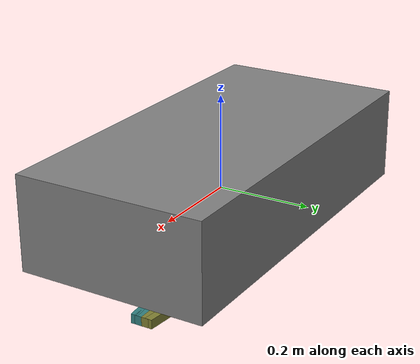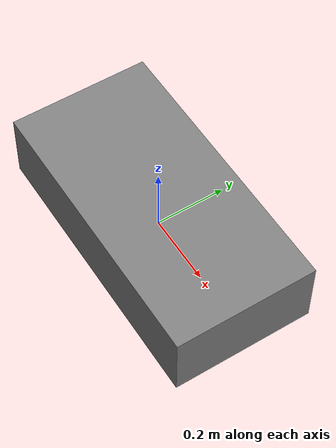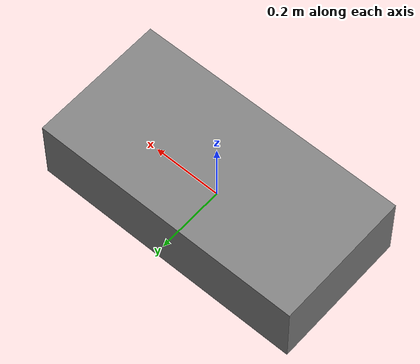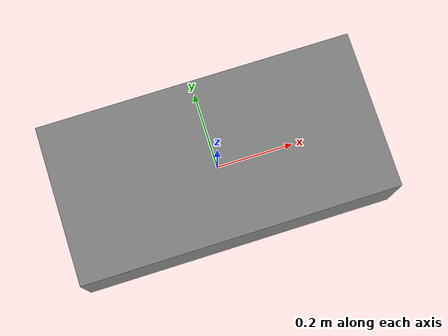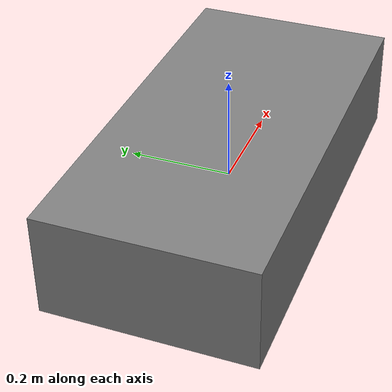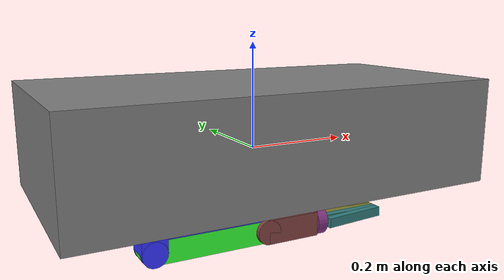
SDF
<?xml version="1.0" ?>
<sdf version="1.6">
  <world name="robosub_simulation_V2">

    <!-- Lighting -->
    <light name="sun" type="directional">
      <pose>0 0 10 0 0 0</pose>
      <diffuse>1 1 1 1</diffuse>
      <specular>0.5 0.5 0.5 1</specular>
      <direction>0.1 0.1 -1</direction>
      <cast_shadows>true</cast_shadows>
    </light>

    <!-- buoyancy plugin -->
    <plugin filename="gz-sim-buoyancy-system"
            name="gz::sim::systems::Buoyancy">
      <uniform_fluid_density>1000</uniform_fluid_density>
    </plugin>

    <!-- seafloor at z= -10-->
    <model name="seafloor">
      <static>true</static>
      <pose>0 0 -10 0 0 0</pose>
      <link name="link">
        <collision name="seafloor_collision">
          <geometry>
            <plane><normal>0 0 1</normal></plane>
          </geometry>
        </collision>
        <visual name="seafloor_visual">
          <geometry>
            <plane>
              <normal>0 0 1</normal>
              <size>50 50</size>
            </plane>
          </geometry>
          <material>
            <diffuse>0.75 0.70 0.45 1</diffuse>
  	        <ambient>0.75 0.70 0.45 1</ambient>
          </material>
        </visual>
      </link>
    </model>

    <!-- sub model -->
    <model name="robosub">
      <!-- static robosub body -->
      <link name="robosub_body">

        <pose>0 0 0 0 0 0</pose>

        <visual name="robosub_body_visual">
          <pose>0 0 0.03 0 0 0</pose>
          <geometry>
            <box>
              <size>0.8 0.4 0.2</size>
            </box>
          </geometry>
          <material>
            <ambient>0.5 0.5 0.5 1.0</ambient>
            <diffuse>0.5 0.5 0.5 1.0</diffuse>
          </material>
        </visual>

        <collision name="robosub_body_collision">
          <pose>0 0 0.03 0 0 0</pose>
          <geometry>
            <box>
              <size>0.8 0.4 0.2</size>
            </box>
          </geometry>
        </collision>

      </link>

      <!-- start of the robot arm model -->
      <!-- Base -->
      <link name="base">
        <pose>0 0 -0.06 0 0 0</pose>
        <inertial>
          <mass>0.5</mass>
          <inertia>
            <ixx>0.001</ixx><ixy>0</ixy><ixz>0</ixz>
            <iyy>0.001</iyy><iyz>0</iyz>
            <izz>0.001</izz>
          </inertia>
        </inertial>

        <visual name="base_visual_0">
          <pose>0 0 -0.02 0 0 0</pose>
          <geometry>
            <cylinder>
              <radius>0.05</radius>
              <length>0.030</length>
            </cylinder>
          </geometry>
          <material>
            <ambient>1.0 0.2 0.2 1.0</ambient>
            <diffuse>1.0 0.2 0.2 1.0</diffuse>
          </material>
        </visual>
        <collision name="base_collision_0">
          <pose>0 0 -0.02 0 0 0</pose>
          <geometry>
            <cylinder>
              <radius>0.05</radius>
              <length>0.030</length>
            </cylinder>
          </geometry>
        </collision>

        <visual name="base_visual_1">
          <pose>0 0 -0.045 1.5708 0 0</pose>
          <geometry>
            <box>
              <size>0.05 0.03 0.03</size>
            </box>
          </geometry>
          <material>
            <ambient>1.0 0.2 0.2 1.0</ambient>
            <diffuse>1.0 0.2 0.2 1.0</diffuse>
          </material>
        </visual>
        <collision name="base_collision_1">
          <pose>0 0 -0.045 1.5708 0 0</pose>
          <geometry>
            <box>
              <size>0.05 0.03 0.03</size>
            </box>
          </geometry>
        </collision>

        <visual name="base_visual_2">
          <pose>0 0 -0.06 1.5708 0 0</pose>
          <geometry>
            <cylinder>
              <radius>0.025</radius>
              <length>0.03</length>
            </cylinder>
          </geometry>
          <material>
            <ambient>1.0 0.2 0.2 1.0</ambient>
            <diffuse>1.0 0.2 0.2 1.0</diffuse>
          </material>
        </visual>
        <collision name="base_collision_2">
          <pose>0 0 -0.06 1.5708 0 0</pose>
          <geometry>
            <cylinder>
              <radius>0.025</radius>
              <length>0.03</length>
            </cylinder>
          </geometry>
        </collision>
      </link>

      <!-- upperarm -->
      <link name="upperarm">
        <pose>0 0 -0.12 0 0 0</pose>
        <inertial>
          <mass>0.5</mass>
          <inertia>
            <ixx>0.001</ixx><ixy>0</ixy><ixz>0</ixz>
            <iyy>0.005</iyy><iyz>0</iyz>
            <izz>0.005</izz>
          </inertia>
        </inertial>

        <visual name="upperarm_visual_0">
          <pose>-0.105 0 0.0 0 0 0</pose>
          <geometry>
            <box>
              <size>0.21 0.05 0.05</size>
            </box>
          </geometry>
          <material>
            <ambient>0.2 0.2 1.0 1.0</ambient>
            <diffuse>0.2 0.2 1.0 1.0</diffuse>
          </material>
        </visual>
        <collision name="upperarm_collision_0">
          <pose>-0.105 0 0.0 0 0 0</pose>
          <geometry>
            <box>
              <size>0.21 0.05 0.05</size>
            </box>
          </geometry>
        </collision>

        <visual name="upperarm_visual_1">
          <pose>-0.21 0 -0.025 0 0 0</pose>
          <geometry>
            <box>
              <size>0.05 0.05 0.05</size>
            </box>
          </geometry>
          <material>
            <ambient>0.2 0.2 1.0 1.0</ambient>
            <diffuse>0.2 0.2 1.0 1.0</diffuse>
          </material>
        </visual>
        <collision name="upperarm_collision_1">
          <pose>-0.21 0 -0.025 0 0 0</pose>
          <geometry>
            <box>
              <size>0.05 0.05 0.05</size>
            </box>
          </geometry>
        </collision>

        <visual name="upperarm_visual_2">
          <pose>0 0.02 0 1.5708 0 0</pose>
          <geometry>
            <cylinder>
              <radius>0.025</radius>
              <length>0.01</length>
            </cylinder>
          </geometry>
          <material>
            <ambient>0.2 0.2 1.0 1.0</ambient>
            <diffuse>0.2 0.2 1.0 1.0</diffuse>
          </material>
        </visual>
        <collision name="upperarm_collision_2">
          <pose>0 0.02 0 1.5708 0 0</pose>
          <geometry>
            <cylinder>
              <radius>0.025</radius>
              <length>0.01</length>
            </cylinder>
          </geometry>
        </collision>

        <visual name="upperarm_visual_3">
          <pose>0 -0.02 0 1.5708 0 0</pose>
          <geometry>
            <cylinder>
              <radius>0.025</radius>
              <length>0.01</length>
            </cylinder>
          </geometry>
          <material>
            <ambient>0.2 0.2 1.0 1.0</ambient>
            <diffuse>0.2 0.2 1.0 1.0</diffuse>
          </material>
        </visual>
        <collision name="upperarm_collision_3">
          <pose>0 -0.02 0 1.5708 0 0</pose>
          <geometry>
            <cylinder>
              <radius>0.025</radius>
              <length>0.01</length>
            </cylinder>
          </geometry>
        </collision>

        <visual name="upperarm_visual_4">
          <pose>-0.21 0 0 1.5708 0 0</pose>
          <geometry>
            <cylinder>
              <radius>0.025</radius>
              <length>0.05</length>
            </cylinder>
          </geometry>
          <material>
            <ambient>0.2 0.2 1.0 1.0</ambient>
            <diffuse>0.2 0.2 1.0 1.0</diffuse>
          </material>
        </visual>
        <collision name="upperarm_collision_4">
          <pose>-0.21 0 0 1.5708 0 0</pose>
          <geometry>
            <cylinder>
              <radius>0.025</radius>
              <length>0.05</length>
            </cylinder>
          </geometry>
        </collision>

        <visual name="upperarm_visual_5">
          <pose>-0.21 0.02 -0.05 1.5708 0 0</pose>
          <geometry>
            <cylinder>
              <radius>0.025</radius>
              <length>0.01</length>
            </cylinder>
          </geometry>
          <material>
            <ambient>0.2 0.2 1.0 1.0</ambient>
            <diffuse>0.2 0.2 1.0 1.0</diffuse>
          </material>
        </visual>
        <collision name="upperarm_collision_5">
          <pose>-0.21 0.02 -0.05 1.5708 0 0</pose>
          <geometry>
            <cylinder>
              <radius>0.025</radius>
              <length>0.01</length>
            </cylinder>
          </geometry>
        </collision>

        <visual name="upperarm_visual_6">
          <pose>-0.21 -0.02 -0.05 1.5708 0 0</pose>
          <geometry>
            <cylinder>
              <radius>0.025</radius>
              <length>0.01</length>
            </cylinder>
          </geometry>
          <material>
            <ambient>0.2 0.2 1.0 1.0</ambient>
            <diffuse>0.2 0.2 1.0 1.0</diffuse>
          </material>
        </visual>
        <collision name="upperarm_collision_6">
          <pose>-0.21 -0.02 -0.05 1.5708 0 0</pose>
          <geometry>
            <cylinder>
              <radius>0.025</radius>
              <length>0.01</length>
            </cylinder>
          </geometry>
        </collision>
      </link>

      <!-- forearm -->
      <link name="forearm">
        <pose>-0.21 0 -0.17 0 0 0</pose>
        <inertial>
          <mass>0.3</mass>
          <inertia>
            <ixx>0.001</ixx><ixy>0</ixy><ixz>0</ixz>
            <iyy>0.003</iyy><iyz>0</iyz>
            <izz>0.003</izz>
          </inertia>
        </inertial>

        <visual name="forearm_visual_0">
          <pose>0.1175 0 0.0 0 0 0</pose>
          <geometry>
            <box>
              <size>0.235 0.03 0.05</size>
            </box>
          </geometry>
          <material>
            <ambient>0.2 1.0 0.2 1.0</ambient>
            <diffuse>0.2 1.0 0.2 1.0</diffuse>
          </material>
        </visual>
        <collision name="forearm_collision_0">
          <pose>0.1175 0 0.0 0 0 0</pose>
          <geometry>
            <box>
              <size>0.235 0.03 0.05</size>
            </box>
          </geometry>
        </collision>

        <visual name="forearm_visual_1">
          <pose>0 0 0 1.5708 0 0</pose>
          <geometry>
            <cylinder>
              <radius>0.025</radius>
              <length>0.03</length>
            </cylinder>
          </geometry>
          <material>
            <ambient>0.2 1.0 0.2 1.0</ambient>
            <diffuse>0.2 1.0 0.2 1.0</diffuse>
          </material>
        </visual>
        <collision name="forearm_collision_1">
          <pose>0 0 0 1.5708 0 0</pose>
          <geometry>
            <cylinder>
              <radius>0.025</radius>
              <length>0.03</length>
            </cylinder>
          </geometry>
        </collision>

        <visual name="forearm_visual_2">
          <pose>0.235 0 0 1.5708 0 0</pose>
          <geometry>
            <cylinder>
              <radius>0.025</radius>
              <length>0.03</length>
            </cylinder>
          </geometry>
          <material>
            <ambient>0.2 1.0 0.2 1.0</ambient>
            <diffuse>0.2 1.0 0.2 1.0</diffuse>
          </material>
        </visual>
        <collision name="forearm_collision_2">
          <pose>0.235 0 0 1.5708 0 0</pose>
          <geometry>
            <cylinder>
              <radius>0.025</radius>
              <length>0.03</length>
            </cylinder>
          </geometry>
        </collision>
      </link>

      <!-- wrist -->
      <link name="wrist">
        <pose>0.025 0 -0.17 0 0 0</pose>
        <inertial>
          <mass>0.2</mass>
          <inertia>
            <ixx>0.001</ixx><ixy>0</ixy><ixz>0</ixz>
            <iyy>0.001</iyy><iyz>0</iyz>
            <izz>0.001</izz>
          </inertia>
        </inertial>

        <visual name="wrist_visual_0">
          <pose>0.05565 0 0.0 0 0 0</pose>
          <geometry>
            <box>
              <size>0.1117 0.05 0.05</size>
            </box>
          </geometry>
          <material>
            <ambient>0.5 0.25 0.25 1.0</ambient>
            <diffuse>0.5 0.25 0.25 1.0</diffuse>
          </material>
        </visual>
        <collision name="wrist_collision_0">
          <pose>0.05565 0 0.0 0 0 0</pose>
          <geometry>
            <box>
              <size>0.1117 0.05 0.05</size>
            </box>
          </geometry>
        </collision>

        <visual name="wrist_visual_1">
          <pose>0 0.02 0 1.5708 0 0</pose>
          <geometry>
            <cylinder>
              <radius>0.025</radius>
              <length>0.01</length>
            </cylinder>
          </geometry>
          <material>
            <ambient>0.5 0.25 0.25 1.0</ambient>
            <diffuse>0.5 0.25 0.25 1.0</diffuse>
          </material>
        </visual>
        <collision name="wrist_collision_1">
          <pose>0 0.02 0 1.5708 0 0</pose>
          <geometry>
            <cylinder>
              <radius>0.025</radius>
              <length>0.01</length>
            </cylinder>
          </geometry>
        </collision>

        <visual name="wrist_visual_2">
          <pose>0 -0.02 0 1.5708 0 0</pose>
          <geometry>
            <cylinder>
              <radius>0.025</radius>
              <length>0.01</length>
            </cylinder>
          </geometry>
          <material>
            <ambient>0.5 0.25 0.25 1.0</ambient>
            <diffuse>0.5 0.25 0.25 1.0</diffuse>
          </material>
        </visual>
        <collision name="wrist_collision_2">
          <pose>0 -0.02 0 1.5708 0 0</pose>
          <geometry>
            <cylinder>
              <radius>0.025</radius>
              <length>0.01</length>
            </cylinder>
          </geometry>
        </collision>
      </link>

      <!-- Hand -->
      <link name="hand">
        <pose>0.1482 0 -0.17 0 0 0</pose>
        <inertial>
          <mass>0.1</mass>
          <inertia>
            <ixx>0.0001</ixx><ixy>0</ixy><ixz>0</ixz>
            <iyy>0.0001</iyy><iyz>0</iyz>
            <izz>0.0001</izz>
          </inertia>
        </inertial>

        <visual name="hand_visual">
          <pose>0 0 0 0 1.5708 0</pose>
          <geometry>
            <cylinder>
              <radius>0.03075</radius>
              <length>0.0223</length>
            </cylinder>
          </geometry>
          <material>
            <ambient>0.5 0.2 0.5 1.0</ambient>
            <diffuse>0.5 0.2 0.5 1.0</diffuse>
          </material>
        </visual>
        <collision name="hand_collision">
          <pose>0 0 0 0 1.5708 0</pose>
          <geometry>
            <cylinder>
              <radius>0.03075</radius>
              <length>0.0223</length>
            </cylinder>
          </geometry>
        </collision>
      </link>

      <!-- Firstfinger -->
      <link name="firstfinger">
        <pose>0.15935 0 -0.17 0 0 0</pose>
        <inertial>
          <mass>0.05</mass>
          <inertia>
            <ixx>0.0001</ixx><ixy>0</ixy><ixz>0</ixz>
            <iyy>0.0001</iyy><iyz>0</iyz>
            <izz>0.0001</izz>
          </inertia>
        </inertial>

        <visual name="firstfinger_visual_0">
          <pose>0.07 0.0076875 0 0 0 0</pose>
          <geometry>
            <box>
              <size>0.140 0.015375 0.02</size>
            </box>
          </geometry>
          <material>
            <ambient>0.5 0.5 0.2 1.0</ambient>
            <diffuse>0.5 0.5 0.2 1.0</diffuse>
          </material>
        </visual>
        <collision name="firstfinger_collision_0">
          <pose>0.07 0.0076875 0 0 0 0</pose>
          <geometry>
            <box>
              <size>0.140 0.015375 0.02</size>
            </box>
          </geometry>
        </collision>

        <visual name="firstfinger_visual_1">
          <pose>0.07 0.0230625 0 0 0 -0.1</pose>
          <geometry>
            <box>
              <size>0.140 0.015375 0.02</size>
            </box>
          </geometry>
          <material>
            <ambient>0.5 0.5 0.2 1.0</ambient>
            <diffuse>0.5 0.5 0.2 1.0</diffuse>
          </material>
        </visual>
        <collision name="firstfinger_collision_1">
          <pose>0.07 0.0230625 0 0 0 -0.1</pose>
          <geometry>
            <box>
              <size>0.140 0.015375 0.02</size>
            </box>
          </geometry>
        </collision>
      </link>

      <!-- Secondfinger -->
      <link name="secondfinger">
        <pose>0.15935 0 -0.17 0 0 0</pose>
        <inertial>
          <mass>0.05</mass>
          <inertia>
            <ixx>0.0001</ixx><ixy>0</ixy><ixz>0</ixz>
            <iyy>0.0001</iyy><iyz>0</iyz>
            <izz>0.0001</izz>
          </inertia>
        </inertial>

        <visual name="secondfinger_visual_0">
          <pose>0.07 -0.0076875 0 0 0 0</pose>
          <geometry>
            <box>
              <size>0.140 0.015375 0.02</size>
            </box>
          </geometry>
          <material>
            <ambient>0.2 0.5 0.5 1.0</ambient>
            <diffuse>0.2 0.5 0.5 1.0</diffuse>
          </material>
        </visual>
        <collision name="secondfinger_collision_0">
          <pose>0.07 -0.0076875 0 0 0 0</pose>
          <geometry>
            <box>
              <size>0.140 0.015375 0.02</size>
            </box>
          </geometry>
        </collision>

        <visual name="secondfinger_visual_1">
          <pose>0.07 -0.0230625 0 0 0 0.1</pose>
          <geometry>
            <box>
              <size>0.140 0.015375 0.02</size>
            </box>
          </geometry>
          <material>
            <ambient>0.2 0.5 0.5 1.0</ambient>
            <diffuse>0.2 0.5 0.5 1.0</diffuse>
          </material>
        </visual>
        <collision name="secondfinger_collision_1">
          <pose>0.07 -0.0230625 0 0 0 0.1</pose>
          <geometry>
            <box>
              <size>0.140 0.015375 0.02</size>
            </box>
          </geometry>
        </collision>
      </link>

      <!-- joint plugins -->
      <!-- jointcontroller plugins -->
      <plugin
        filename="gz-sim-joint-controller-system"
        name="gz::sim::systems::JointController">
        <joint_name>subToBase</joint_name>
        <initial_velocity>0</initial_velocity>
        <topic>/subToBaseTopic</topic>
      </plugin>

      <plugin
        filename="gz-sim-joint-controller-system"
        name="gz::sim::systems::JointController">
        <joint_name>baseToUpperarm</joint_name>
        <initial_velocity>0</initial_velocity>
        <topic>/baseToUpperarmTopic</topic>
      </plugin>

      <plugin
        filename="gz-sim-joint-controller-system"
        name="gz::sim::systems::JointController">
        <joint_name>upperarmToForearm</joint_name>
        <initial_velocity>0</initial_velocity>
        <topic>/upperarmToForearmTopic</topic>
      </plugin>

      <plugin
        filename="gz-sim-joint-controller-system"
        name="gz::sim::systems::JointController">
        <joint_name>forearmToWrist</joint_name>
        <initial_velocity>0</initial_velocity>
        <topic>/forearmToWristTopic</topic>
      </plugin>

      <plugin
        filename="gz-sim-joint-controller-system"
        name="gz::sim::systems::JointController">
        <joint_name>wristToHand</joint_name>
        <initial_velocity>0</initial_velocity>
        <topic>/wristToHandTopic</topic>
      </plugin>

      <plugin
        filename="gz-sim-joint-controller-system"
        name="gz::sim::systems::JointController">
        <joint_name>handToFirstfinger</joint_name>
        <initial_velocity>0</initial_velocity>
        <topic>/handToFirstfingerTopic</topic>
      </plugin>

       <plugin
           filename="gz-sim-joint-controller-system"
           name="gz::sim::systems::JointController">
           <joint_name>handToSecondfinger</joint_name>
           <initial_velocity>0</initial_velocity>
           <topic>/handToSecondfingerTopic</topic>
         </plugin>

      <!-- Hydrodynamics per link -->
      <plugin filename="gz-sim-hydrodynamics-system"
              name="gz::sim::systems::Hydrodynamics">
        <link_name>base</link_name>
        <linear_damping>-1 -1 -1 -0.1 -0.1 -0.1</linear_damping>
        <quadratic_damping>-0.5 -0.5 -0.5 -0.05 -0.05 -0.05</quadratic_damping>
      </plugin>

      <plugin filename="gz-sim-hydrodynamics-system"
              name="gz::sim::systems::Hydrodynamics">
        <link_name>upperarm</link_name>
        <linear_damping>-1 -1 -1 -0.1 -0.1 -0.1</linear_damping>
        <quadratic_damping>-0.5 -0.5 -0.5 -0.05 -0.05 -0.05</quadratic_damping>
      </plugin>

      <plugin filename="gz-sim-hydrodynamics-system"
              name="gz::sim::systems::Hydrodynamics">
        <link_name>forearm</link_name>
        <linear_damping>-1 -1 -1 -0.1 -0.1 -0.1</linear_damping>
        <quadratic_damping>-0.5 -0.5 -0.5 -0.05 -0.05 -0.05</quadratic_damping>
      </plugin>

      <plugin filename="gz-sim-hydrodynamics-system"
              name="gz::sim::systems::Hydrodynamics">
        <link_name>wrist</link_name>
        <linear_damping>-1 -1 -1 -0.1 -0.1 -0.1</linear_damping>
        <quadratic_damping>-0.5 -0.5 -0.5 -0.05 -0.05 -0.05</quadratic_damping>
      </plugin>

      <plugin filename="gz-sim-hydrodynamics-system"
              name="gz::sim::systems::Hydrodynamics">
        <link_name>hand</link_name>
        <linear_damping>-1 -1 -1 -0.1 -0.1 -0.1</linear_damping>
        <quadratic_damping>-0.5 -0.5 -0.5 -0.05 -0.05 -0.05</quadratic_damping>
      </plugin>

      <plugin filename="gz-sim-hydrodynamics-system"
              name="gz::sim::systems::Hydrodynamics">
        <link_name>firstfinger</link_name>
        <linear_damping>-1 -1 -1 -0.1 -0.1 -0.1</linear_damping>
        <quadratic_damping>-0.5 -0.5 -0.5 -0.05 -0.05 -0.05</quadratic_damping>
      </plugin>

      <plugin filename="gz-sim-hydrodynamics-system"
              name="gz::sim::systems::Hydrodynamics">
        <link_name>secondfinger</link_name>
        <linear_damping>-1 -1 -1 -0.1 -0.1 -0.1</linear_damping>
        <quadratic_damping>-0.5 -0.5 -0.5 -0.05 -0.05 -0.05</quadratic_damping>
      </plugin>

      <!-- Joints -->

      <!-- join body to the world so it is not  -->
      <joint name="fixedToWorld" type="fixed">
        <parent>world</parent>
        <child>robosub_body</child>
      </joint>

      <joint name="subToBase" type="revolute">
        <parent>robosub_body</parent>
        <child>base</child>
        <axis>
          <xyz>0 0 1</xyz>
          <limit>
            <lower>-2.3562</lower>
            <upper>2.3562</upper>
            <effort>10</effort>
            <velocity>1.0</velocity>
          </limit>
          <dynamics>
             <damping>0.2</damping>
           </dynamics>
        </axis>
      </joint>

   <joint name="baseToUpperarm" type="revolute">
     <parent>base</parent>
     <child>upperarm</child>
     <axis>
       <xyz>0 1 0</xyz>
       <limit>
         <lower>-1.8326</lower>
         <upper>1.8326</upper>
         <effort>10</effort>
         <velocity>1.0</velocity>
       </limit>
       <dynamics>
          <damping>0.2</damping>
          <spring_reference>0</spring_reference>
          <spring_stiffness>5</spring_stiffness>
        </dynamics>
     </axis>
   </joint>

      <joint name="upperarmToForearm" type="revolute">
        <parent>upperarm</parent>
        <child>forearm</child>
        <axis>
          <xyz>0 1 0</xyz>
          <limit>
            <lower>0.1396</lower>
            <upper>3.0014</upper>
            <effort>10</effort>
            <velocity>1.0</velocity>
          </limit>
         <dynamics>
            <damping>0.2</damping>
          </dynamics>
        </axis>
      </joint>

      <joint name="forearmToWrist" type="revolute">
        <parent>forearm</parent>
        <child>wrist</child>
        <axis>
          <xyz>0 1 0</xyz>
          <limit>
            <lower>-0.3491</lower>
            <upper>1.7279</upper>
            <effort>10</effort>
            <velocity>1.0</velocity>
          </limit>
        </axis>
       <dynamics>
          <damping>0.2</damping>
        </dynamics>
      </joint>

      <joint name="wristToHand" type="revolute">
        <parent>wrist</parent>
        <child>hand</child>
        <axis>
          <xyz>1 0 0</xyz>
          <limit>
            <lower>0</lower>
            <upper>4.712</upper>
            <effort>10</effort>
            <velocity>1.0</velocity>
          </limit>
         <dynamics>
            <damping>0.2</damping>
          </dynamics>
        </axis>
      </joint>

      <joint name="handToFirstfinger" type="revolute">
        <parent>hand</parent>
        <child>firstfinger</child>
        <axis>
          <xyz>0 0 1</xyz>
          <limit>
            <lower>0</lower>
            <upper>0.7854</upper>
            <effort>10</effort>
            <velocity>1.0</velocity>
          </limit>
         <dynamics>
           <damping>0.2</damping>
         </dynamics>
        </axis>
      </joint>

      <joint name="handToSecondfinger" type="revolute">
        <parent>hand</parent>
        <child>secondfinger</child>
        <axis>
          <xyz>0 0 -1</xyz>
          <limit>
            <lower>0</lower>
            <upper>0.7854</upper>
            <effort>10</effort>
            <velocity>1.0</velocity>
          </limit>
         <dynamics>
            <damping>0.2</damping>
          </dynamics>
        </axis>
      </joint>

    </model>
  </world>
</sdf>
